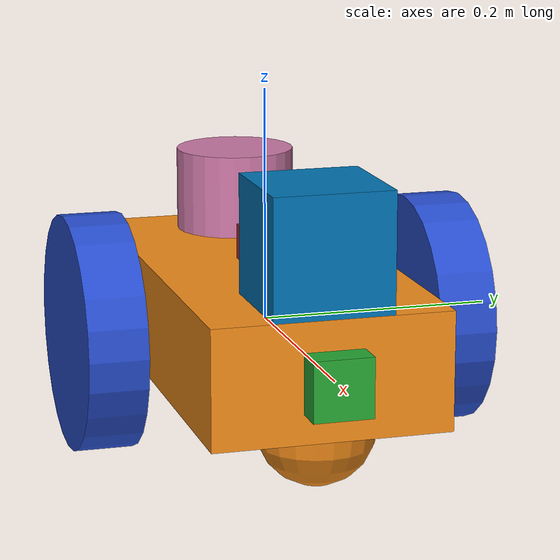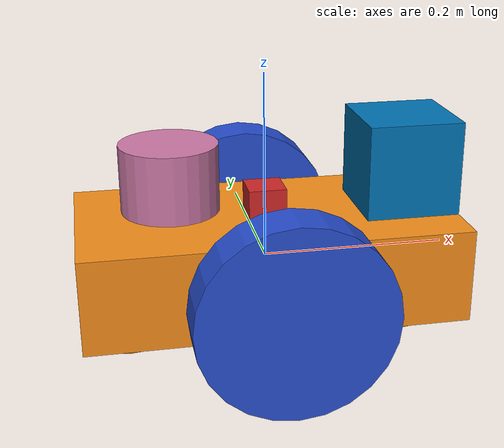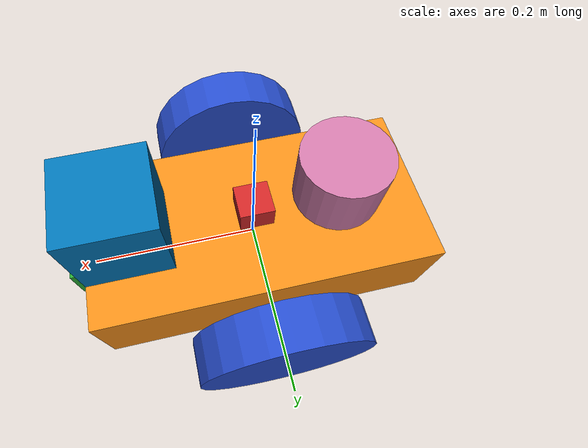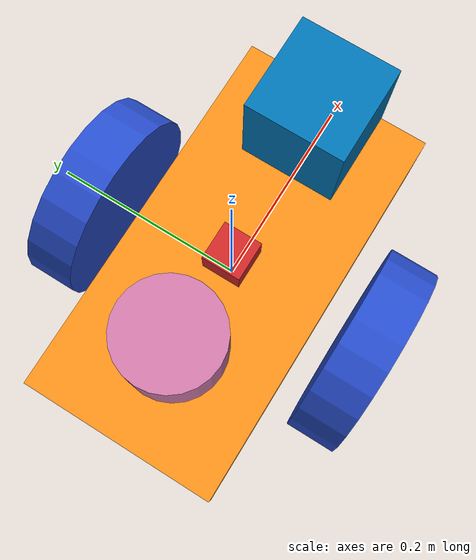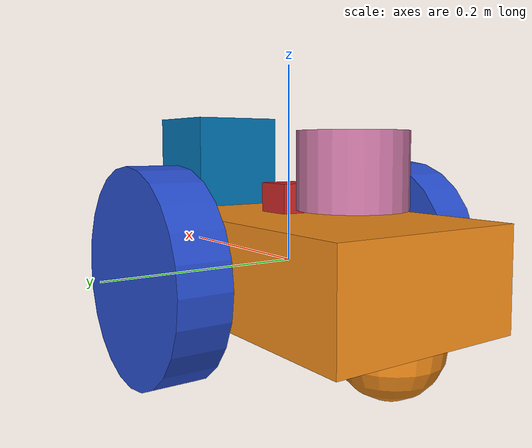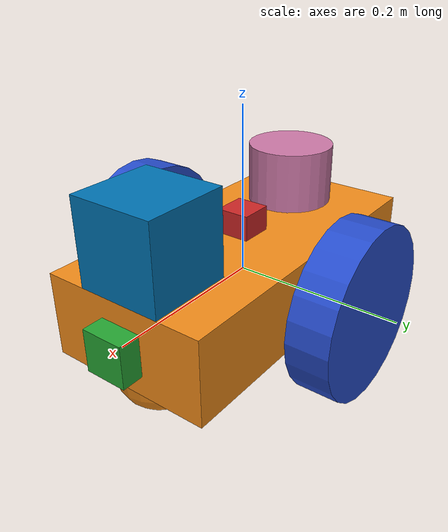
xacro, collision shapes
<?xml version='1.0'?>

<robot name="myrobot" xmlns:xacro="http://www.ros.org/wiki/xacro">

  <xacro:property name="cameraSize" value="0.05"/>
  <xacro:property name="cameraMass" value="0.1"/>
  <xacro:property name="imuSize" value="0.04"/>
  <xacro:property name="imuMass" value="0.1"/>
  <xacro:arg name="gpu" default="false"/>
  <xacro:property name="gpu" value="$(arg gpu)" />
  <xacro:include filename="$(find mybot_description)/urdf/mybot.gazebo" />
  <xacro:include filename="$(find mybot_description)/urdf/materials.xacro" />
  <xacro:include filename="$(find mybot_description)/urdf/macros.xacro" />

  <link name='chassis'>
    <pose>0 0 0.1 0 0 0</pose>

    <inertial>
      <mass value="15.0"/>
      <origin xyz="0.0 0 0.1" rpy=" 0 0 0"/>
      <inertia
          ixx="0.1" ixy="0" ixz="0"
          iyy="0.1" iyz="0"
          izz="0.1"
      />
    </inertial>

    <collision name='collision'>
      <geometry>
        <box size=".4 .2 .1"/>
      </geometry>
    </collision>

    <visual name='chassis_visual'>
      <origin xyz="0 0 0" rpy=" 0 0 0"/>
      <geometry>
        <box size=".4 .2 .1"/>
      </geometry>
    </visual>

    <collision name='caster_collision'>
      <origin xyz="-0.15 0 -0.05" rpy=" 0 0 0"/>
      <geometry>
        <sphere radius="0.05"/>
      </geometry>
      <surface>
        <friction>
          <ode>
            <mu>0</mu>
            <mu2>0</mu2>
            <slip1>1.0</slip1>
            <slip2>1.0</slip2>
          </ode>
        </friction>
      </surface>
    </collision>

    <visual name='caster_visual'>
      <origin xyz="-0.15 0 -0.05" rpy=" 0 0 0"/>
      <geometry>
        <sphere radius="0.05"/>
      </geometry>
    </visual>

    <collision name='caster_front_collision'>
      <origin xyz="0.15 0 -0.05" rpy=" 0 0 0"/>
      <geometry>
        <sphere radius="0.05"/>
      </geometry>
      <surface>
        <friction>
          <ode>
            <mu>0</mu>
            <mu2>0</mu2>
            <slip1>1.0</slip1>
            <slip2>1.0</slip2>
          </ode>
        </friction>
      </surface>
    </collision>

    <visual name='caster_front_visual'>
      <origin xyz="0.15 0 -0.05" rpy=" 0 0 0"/>
      <geometry>
        <sphere radius="0.05"/>
      </geometry>
    </visual>

  </link>

  <link name="left_wheel">
    <!--origin xyz="0.1 0.13 0.1" rpy="0 1.5707 1.5707"/-->
    <collision name="collision">
      <origin xyz="0 0 0" rpy="0 1.5707 1.5707"/>
      <geometry>
        <cylinder radius="0.1" length="0.05"/>
      </geometry>
    </collision>
    <visual name="left_wheel_visual">
      <origin xyz="0 0 0" rpy="0 1.5707 1.5707"/>
      <geometry>
        <cylinder radius="0.1" length="0.05"/>
      </geometry>
    </visual>
    <inertial>
      <origin xyz="0 0 0" rpy="0 1.5707 1.5707"/>
      <mass value="5"/>
      <inertia
        ixx=".1" ixy="0.0" ixz="0.0"
        iyy=".1" iyz="0.0"
        izz=".1"/>
    </inertial>
  </link>

  <link name="right_wheel">
    <!--origin xyz="0.1 -0.13 0.1" rpy="0 1.5707 1.5707"/-->
    <collision name="collision">
      <origin xyz="0 0 0" rpy="0 1.5707 1.5707"/>
      <geometry>
        <cylinder radius="0.1" length="0.05"/>
      </geometry>
    </collision>
    <visual name="right_wheel_visual">
      <origin xyz="0 0 0" rpy="0 1.5707 1.5707"/>
      <geometry>
        <cylinder radius="0.1" length="0.05"/>
      </geometry>
    </visual>
    <inertial>
      <origin xyz="0 0 0" rpy="0 1.5707 1.5707"/>
      <mass value="5"/>
      <inertia
        ixx=".1" ixy="0.0" ixz="0.0"
        iyy=".1" iyz="0.0"
        izz=".1"/>
    </inertial>
  </link>

  <joint type="continuous" name="left_wheel_hinge">
    <origin xyz="0 0.15 0" rpy="0 0 0"/>
    <!--origin xyz="0.1 0.13 0" rpy="0 1.5707 1.5707"/-->
    <child link="left_wheel"/>
    <parent link="chassis"/>
    <axis xyz="0 1 0" rpy="0 0 0"/>
    <limit effort="10000" velocity="1000"/>
    <joint_properties damping="1.0" friction="1.0"/>
  </joint>

  <joint type="continuous" name="right_wheel_hinge">
    <origin xyz="0 -0.15 0" rpy="0 0 0"/>
    <!--origin xyz="0.1 -0.13 0" rpy="0 1.5707 1.5707"/-->
    <child link="right_wheel"/>
    <parent link="chassis"/>
    <axis xyz="0 1 0" rpy="0 0 0"/>
    <limit effort="10000" velocity="1000"/>
    <joint_properties damping="1.0" friction="1.0"/>
  </joint>

  <link name="camera">
    <collision>
      <origin xyz="0 0 0" rpy="0 0 0"/>
      <geometry>
        <box size="${cameraSize} ${cameraSize} ${cameraSize}"/>
      </geometry>
    </collision>

    <visual>
      <origin xyz="0 0 0" rpy="0 0 0"/>
      <geometry>
        <box size="${cameraSize} ${cameraSize} ${cameraSize}"/>
      </geometry>
      <material name="green"/>
    </visual>

    <inertial>
      <mass value="${cameraMass}" />
      <origin xyz="0 0 0" rpy="0 0 0"/>
      <box_inertia m="${cameraMass}" x="${cameraSize}" y="${cameraSize}" z="${cameraSize}" />
      <inertia ixx="1e-6" ixy="0" ixz="0" iyy="1e-6" iyz="0" izz="1e-6" />
    </inertial>
  </link>

  <joint name="camera_joint" type="fixed">
    <axis xyz="0 1 0" />
    <origin xyz=".2 0 0" rpy="0 0 0"/>
    <parent link="chassis"/>
    <child link="camera"/>
  </joint>

  <joint name="hokuyo_joint" type="fixed">
    <axis xyz="0 1 0" />
    <origin xyz=".15 0 .1" rpy="0 0 0"/>
    <parent link="chassis"/>
    <child link="hokuyo"/>
  </joint>

  <!-- Hokuyo Laser -->
  <link name="hokuyo">
    <collision>
      <origin xyz="0 0 0" rpy="0 0 0"/>
      <geometry>
    <box size="0.1 0.1 0.1"/>
      </geometry>
    </collision>

    <visual>
      <origin xyz="0 0 0" rpy="0 0 0"/>
      <geometry>
        <mesh filename="package://mybot_description/meshes/hokuyo.dae"/>
      </geometry>
    </visual>

    <inertial>
      <mass value="1e-5" />
      <origin xyz="0 0 0" rpy="0 0 0"/>
      <inertia ixx="1e-6" ixy="0" ixz="0" iyy="1e-6" iyz="0" izz="1e-6" />
    </inertial>
  </link>

  <joint name="imu_joint" type="fixed">
    <axis xyz="1 0 0"/>
    <origin xyz="0.0 0.0 0.06" rpy="0 0 0"/>
    <parent link="chassis"/>
    <child link="imu_link"/>
  </joint>

  <link name="imu_link">
    <inertial>
      <mass value="${imuMass}"/>
      <origin rpy="0 0 0" xyz="0 0 0"/>
      <box_inertia m="${imuMass}" x="${imuSize}" y="${imuSize}" z="${imuSize}" />
      <inertia ixx="1e-6" ixy="0" ixz="0" iyy="1e-6" iyz="0" izz="1e-6" />
    </inertial>
    <visual>
      <origin rpy="0 0 0" xyz="0 0 0"/>
      <geometry>
        <box size="${imuSize} ${imuSize} ${imuSize}"/>
      </geometry>
      <material name="red"/>
    </visual>
    <collision>
      <origin rpy="0 0 0" xyz="0 0 0"/>
      <geometry>
        <box size="${imuSize} ${imuSize} ${imuSize}"/>
      </geometry>
    </collision>
  </link>

  <xacro:include filename="$(find lidar_description)/urdf/VLP-16.urdf.xacro"/>
  <xacro:VLP-16 parent="chassis" name="velodyne" topic="/velodyne_points" hz="10" samples="440" gpu="${gpu}">
    <origin xyz="-0.1 0 0.06" rpy="0 0 0" />
  </xacro:VLP-16>

</robot>

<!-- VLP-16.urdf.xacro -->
<robot xmlns:xacro="http://www.ros.org/wiki/xacro" name="VLP-16">
  <xacro:property name="M_PI" value="3.1415926535897931" />
  <xacro:macro name="VLP-16" params="*origin parent:=base_link name:=velodyne topic:=/velodyne_points organize_cloud:=false hz:=10 lasers:=16 samples:=1875 collision_range:=0.3 min_range:=2.0 max_range:=80.0 noise:=0.00 min_angle:=-${M_PI} max_angle:=${M_PI} gpu:=false">

    <joint name="${name}_base_mount_joint" type="fixed">
      <xacro:insert_block name="origin" />
      <parent link="${parent}"/>
      <child link="${name}_base_link"/>
    </joint>

    <link name="${name}_base_link">
      <inertial>
        <mass value="0.83"/>
        <origin xyz="0 0 0.03585"/>
        <inertia ixx="${(0.83 * (3.0*0.0516*0.0516 + 0.0717*0.0717)) / 12.0}" ixy="0" ixz="0"
          iyy="${(0.83 * (3.0*0.0516*0.0516 + 0.0717*0.0717)) / 12.0}" iyz="0"
          izz="${0.5 * 0.83 * (0.0516*0.0516)}"/>
      </inertial>
      <visual>
        <geometry>
          <mesh filename="package://lidar_description/meshes/VLP16/VLP16_base_1.dae" />
        </geometry>
      </visual>
      <visual>
        <geometry>
          <mesh filename="package://lidar_description/meshes/VLP16/VLP16_base_2.dae" />
        </geometry>
      </visual>
      <collision>
        <origin rpy="0 0 0" xyz="0 0 0.03585"/>
        <geometry>
          <cylinder radius="0.0516" length="0.0717"/>
        </geometry>
      </collision>
    </link>

    <joint name="${name}_base_scan_joint" type="fixed" >
      <origin xyz="0 0 0.0377" rpy="0 0 0" />
      <parent link="${name}_base_link" />
      <child link="${name}"/>
    </joint>

    <link name="${name}">
      <inertial>
        <mass value="0.01"/>
        <origin xyz="0 0 0"/>
        <inertia ixx="1e-7" ixy="0" ixz="0" iyy="1e-7" iyz="0" izz="1e-7"/>
      </inertial>
      <visual>
        <origin xyz="0 0 -0.0377" />
        <geometry>
          <mesh filename="package://lidar_description/meshes/VLP16/VLP16_scan.dae" />
        </geometry>
      </visual>
    </link>

    <!-- Gazebo requires the velodyne_gazebo_plugins package -->
    <gazebo reference="${name}">
      <xacro:if value="${gpu}">
        <sensor type="gpu_ray" name="${name}-VLP16">
          <pose>0 0 0 0 0 0</pose>
          <visualize>false</visualize>
          <update_rate>${hz}</update_rate>
          <ray>
            <scan>
              <horizontal>
                <samples>${samples}</samples>
                <resolution>1</resolution>
                <min_angle>${min_angle}</min_angle>
                <max_angle>${max_angle}</max_angle>
              </horizontal>
              <vertical>
                <samples>${lasers}</samples>
                <resolution>1</resolution>
                <min_angle>-${15.0*M_PI/180.0}</min_angle>
                <max_angle> ${15.0*M_PI/180.0}</max_angle>
              </vertical>
            </scan>
            <range>
              <min>${collision_range}</min>
              <max>${max_range+1}</max>
              <resolution>0.001</resolution>
            </range>
            <noise>
              <type>gaussian</type>
              <mean>0.0</mean>
              <stddev>0.0</stddev>
            </noise>
          </ray>
          <plugin name="gazebo_ros_laser_controller" filename="libgazebo_ros_lidar_gpu.so">
            <topicName>${topic}</topicName>
            <frameName>${name}</frameName>
            <organize_cloud>${organize_cloud}</organize_cloud>
            <min_range>${min_range}</min_range>
            <max_range>${max_range}</max_range>
            <gaussianNoise>${noise}</gaussianNoise>
          </plugin>
        </sensor>
      </xacro:if>
      <xacro:unless value="${gpu}">
        <sensor type="ray" name="${name}-VLP16">
          <pose>0 0 0 0 0 0</pose>
          <visualize>false</visualize>
          <update_rate>${hz}</update_rate>
          <ray>
            <scan>
              <horizontal>
                <samples>${samples}</samples>
                <resolution>1</resolution>
                <min_angle>${min_angle}</min_angle>
                <max_angle>${max_angle}</max_angle>
              </horizontal>
              <vertical>
                <samples>${lasers}</samples>
                <resolution>1</resolution>
                <min_angle>-${15.0*M_PI/180.0}</min_angle>
                <max_angle> ${15.0*M_PI/180.0}</max_angle>
              </vertical>
            </scan>
            <range>
              <min>${collision_range}</min>
              <max>${max_range+1}</max>
              <resolution>0.001</resolution>
            </range>
            <noise>
              <type>gaussian</type>
              <mean>0.0</mean>
              <stddev>0.0</stddev>
            </noise>
          </ray>
          <plugin name="gazebo_ros_laser_controller" filename="libgazebo_ros_lidar.so">
            <topicName>${topic}</topicName>
            <frameName>${name}</frameName>
            <organize_cloud>${organize_cloud}</organize_cloud>
            <min_range>${min_range}</min_range>
            <max_range>${max_range}</max_range>
            <gaussianNoise>${noise}</gaussianNoise>
          </plugin>
        </sensor>
      </xacro:unless>
    </gazebo>

    <!-- 发出位姿话题 -->
    <gazebo>
      <plugin name="p3d_base_controller" filename="libgazebo_ros_p3d.so">
        <alwaysOn>true</alwaysOn>
        <updateRate>10.0</updateRate>
        <bodyName>${name}</bodyName>
        <topicName>/vlp/lidar/pose</topicName>
        <gaussianNoise>0.0</gaussianNoise>
        <frameName>map</frameName>
        <xyzOffsets>0 0 0</xyzOffsets>
        <rpyOffsets>0 0 0</rpyOffsets>
      </plugin>
    </gazebo>

  </xacro:macro>
</robot>
